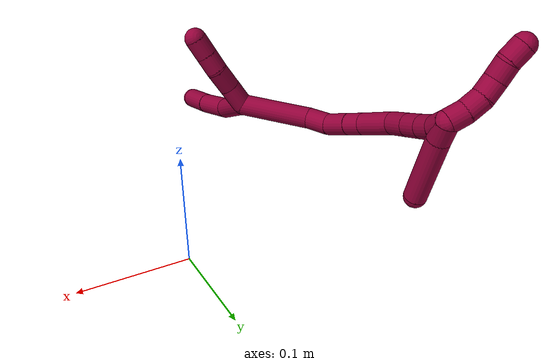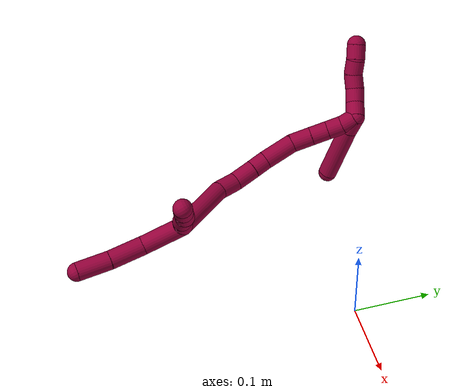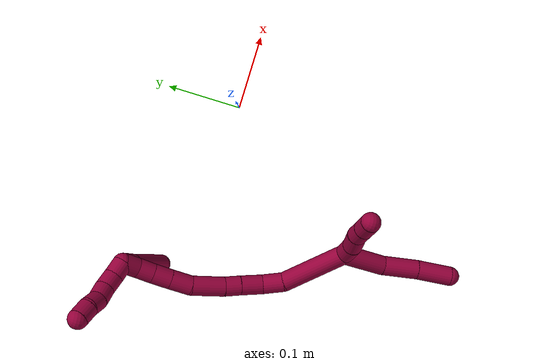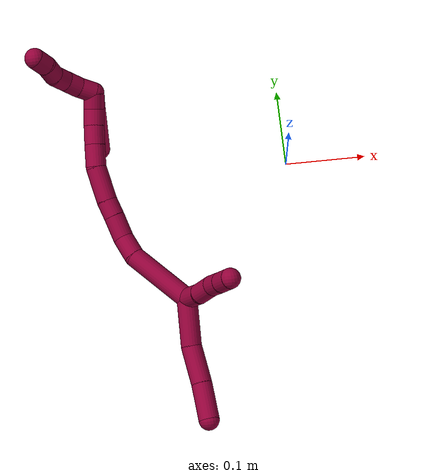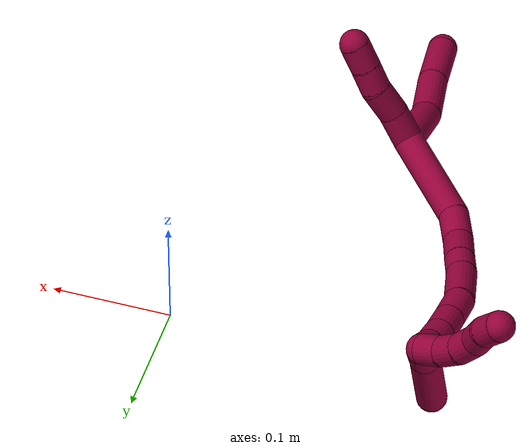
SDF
<sdf version="1.7">
 <world name="default">
  <model name="8">
   <static>0</static>
   <link name="8">
    <collision name="collision-cylinder-e_1_2_8">
     <pose>-0.001562 -0.001248 -0.02882 3.09833 -0.054086 -1.79241</pose>
     <geometry><cylinder><radius>0.0125</radius><length>0.057778</length></cylinder></geometry>
     <surface>
      <friction><ode><mu>1.16</mu><mu2>1.16</mu2><slip1>0</slip1><slip2>0</slip2></ode></friction>
      <contact><ode><kp>1e+06</kp><kd>1</kd><max_vel>0</max_vel><min_depth>0.001</min_depth></ode></contact>
     </surface>
    </collision>
    <visual name="visual-cylinder-e_1_2_8">
     <pose>-0.001562 -0.001248 -0.02882 3.09833 -0.054086 -1.79241</pose>
     <geometry><cylinder><radius>0.0125</radius><length>0.057778</length></cylinder></geometry>
     <material><ambient>0.584314 0 0.227451 1</ambient></material>
    </visual>
    <collision name="collision-cylinder-e_2_8_9">
     <pose>-0.000654 -0.009182 -0.080134 2.85262 0.104859 0.692295</pose>
     <geometry><cylinder><radius>0.0125</radius><length>0.047194</length></cylinder></geometry>
     <surface>
      <friction><ode><mu>1.16</mu><mu2>1.16</mu2><slip1>0</slip1><slip2>0</slip2></ode></friction>
      <contact><ode><kp>1e+06</kp><kd>1</kd><max_vel>0</max_vel><min_depth>0.001</min_depth></ode></contact>
     </surface>
    </collision>
    <visual name="visual-cylinder-e_2_8_9">
     <pose>-0.000654 -0.009182 -0.080134 2.85262 0.104859 0.692295</pose>
     <geometry><cylinder><radius>0.0125</radius><length>0.047194</length></cylinder></geometry>
     <material><ambient>0.584314 0 0.227451 1</ambient></material>
    </visual>
    <collision name="collision-cylinder-e_3_9_6">
     <pose>0.002587 -0.023085 -0.123941 2.81517 0.034257 0.207298</pose>
     <geometry><cylinder><radius>0.0125</radius><length>0.045028</length></cylinder></geometry>
     <surface>
      <friction><ode><mu>1.16</mu><mu2>1.16</mu2><slip1>0</slip1><slip2>0</slip2></ode></friction>
      <contact><ode><kp>1e+06</kp><kd>1</kd><max_vel>0</max_vel><min_depth>0.001</min_depth></ode></contact>
     </surface>
    </collision>
    <visual name="visual-cylinder-e_3_9_6">
     <pose>0.002587 -0.023085 -0.123941 2.81517 0.034257 0.207298</pose>
     <geometry><cylinder><radius>0.0125</radius><length>0.045028</length></cylinder></geometry>
     <material><ambient>0.584314 0 0.227451 1</ambient></material>
    </visual>
    <collision name="collision-cylinder-e_1_2_10">
     <pose>0.006844 -0.012211 0.002657 1.35658 0.501027 0.40671</pose>
     <geometry><cylinder><radius>0.0125</radius><length>0.028495</length></cylinder></geometry>
     <surface>
      <friction><ode><mu>1.16</mu><mu2>1.16</mu2><slip1>0</slip1><slip2>0</slip2></ode></friction>
      <contact><ode><kp>1e+06</kp><kd>1</kd><max_vel>0</max_vel><min_depth>0.001</min_depth></ode></contact>
     </surface>
    </collision>
    <visual name="visual-cylinder-e_1_2_10">
     <pose>0.006844 -0.012211 0.002657 1.35658 0.501027 0.40671</pose>
     <geometry><cylinder><radius>0.0125</radius><length>0.028495</length></cylinder></geometry>
     <material><ambient>0.584314 0 0.227451 1</ambient></material>
    </visual>
    <collision name="collision-cylinder-e_2_10_11">
     <pose>0.020938 -0.035136 0.009941 1.16304 0.55591 0.370827</pose>
     <geometry><cylinder><radius>0.0125</radius><length>0.027482</length></cylinder></geometry>
     <surface>
      <friction><ode><mu>1.16</mu><mu2>1.16</mu2><slip1>0</slip1><slip2>0</slip2></ode></friction>
      <contact><ode><kp>1e+06</kp><kd>1</kd><max_vel>0</max_vel><min_depth>0.001</min_depth></ode></contact>
     </surface>
    </collision>
    <visual name="visual-cylinder-e_2_10_11">
     <pose>0.020938 -0.035136 0.009941 1.16304 0.55591 0.370827</pose>
     <geometry><cylinder><radius>0.0125</radius><length>0.027482</length></cylinder></geometry>
     <material><ambient>0.584314 0 0.227451 1</ambient></material>
    </visual>
    <collision name="collision-cylinder-e_3_11_12">
     <pose>0.032838 -0.055347 0.016522 1.36802 0.447093 0.366557</pose>
     <geometry><cylinder><radius>0.0125</radius><length>0.021502</length></cylinder></geometry>
     <surface>
      <friction><ode><mu>1.16</mu><mu2>1.16</mu2><slip1>0</slip1><slip2>0</slip2></ode></friction>
      <contact><ode><kp>1e+06</kp><kd>1</kd><max_vel>0</max_vel><min_depth>0.001</min_depth></ode></contact>
     </surface>
    </collision>
    <visual name="visual-cylinder-e_3_11_12">
     <pose>0.032838 -0.055347 0.016522 1.36802 0.447093 0.366557</pose>
     <geometry><cylinder><radius>0.0125</radius><length>0.021502</length></cylinder></geometry>
     <material><ambient>0.584314 0 0.227451 1</ambient></material>
    </visual>
    <collision name="collision-cylinder-e_4_12_5">
     <pose>0.042431 -0.074685 0.020814 1.33746 0.454656 0.36159</pose>
     <geometry><cylinder><radius>0.0125</radius><length>0.022521</length></cylinder></geometry>
     <surface>
      <friction><ode><mu>1.16</mu><mu2>1.16</mu2><slip1>0</slip1><slip2>0</slip2></ode></friction>
      <contact><ode><kp>1e+06</kp><kd>1</kd><max_vel>0</max_vel><min_depth>0.001</min_depth></ode></contact>
     </surface>
    </collision>
    <visual name="visual-cylinder-e_4_12_5">
     <pose>0.042431 -0.074685 0.020814 1.33746 0.454656 0.36159</pose>
     <geometry><cylinder><radius>0.0125</radius><length>0.022521</length></cylinder></geometry>
     <material><ambient>0.584314 0 0.227451 1</ambient></material>
    </visual>
    <collision name="collision-cylinder-e_1_2_13">
     <pose>-0.026618 0.018136 0.028317 -0.569645 -0.669573 0.203008</pose>
     <geometry><cylinder><radius>0.0125</radius><length>0.085775</length></cylinder></geometry>
     <surface>
      <friction><ode><mu>1.16</mu><mu2>1.16</mu2><slip1>0</slip1><slip2>0</slip2></ode></friction>
      <contact><ode><kp>1e+06</kp><kd>1</kd><max_vel>0</max_vel><min_depth>0.001</min_depth></ode></contact>
     </surface>
    </collision>
    <visual name="visual-cylinder-e_1_2_13">
     <pose>-0.026618 0.018136 0.028317 -0.569645 -0.669573 0.203008</pose>
     <geometry><cylinder><radius>0.0125</radius><length>0.085775</length></cylinder></geometry>
     <material><ambient>0.584314 0 0.227451 1</ambient></material>
    </visual>
    <collision name="collision-cylinder-e_2_13_14">
     <pose>-0.058037 0.042442 0.068258 -0.487969 -0.349793 0.087921</pose>
     <geometry><cylinder><radius>0.0125</radius><length>0.028016</length></cylinder></geometry>
     <surface>
      <friction><ode><mu>1.16</mu><mu2>1.16</mu2><slip1>0</slip1><slip2>0</slip2></ode></friction>
      <contact><ode><kp>1e+06</kp><kd>1</kd><max_vel>0</max_vel><min_depth>0.001</min_depth></ode></contact>
     </surface>
    </collision>
    <visual name="visual-cylinder-e_2_13_14">
     <pose>-0.058037 0.042442 0.068258 -0.487969 -0.349793 0.087921</pose>
     <geometry><cylinder><radius>0.0125</radius><length>0.028016</length></cylinder></geometry>
     <material><ambient>0.584314 0 0.227451 1</ambient></material>
    </visual>
    <collision name="collision-cylinder-e_3_14_15">
     <pose>-0.066496 0.050834 0.093981 -0.156349 -0.250921 0.019759</pose>
     <geometry><cylinder><radius>0.0125</radius><length>0.029469</length></cylinder></geometry>
     <surface>
      <friction><ode><mu>1.16</mu><mu2>1.16</mu2><slip1>0</slip1><slip2>0</slip2></ode></friction>
      <contact><ode><kp>1e+06</kp><kd>1</kd><max_vel>0</max_vel><min_depth>0.001</min_depth></ode></contact>
     </surface>
    </collision>
    <visual name="visual-cylinder-e_3_14_15">
     <pose>-0.066496 0.050834 0.093981 -0.156349 -0.250921 0.019759</pose>
     <geometry><cylinder><radius>0.0125</radius><length>0.029469</length></cylinder></geometry>
     <material><ambient>0.584314 0 0.227451 1</ambient></material>
    </visual>
    <collision name="collision-cylinder-e_4_15_16">
     <pose>-0.07303 0.054775 0.117932 -0.17261 -0.279986 0.024383</pose>
     <geometry><cylinder><radius>0.0125</radius><length>0.020813</length></cylinder></geometry>
     <surface>
      <friction><ode><mu>1.16</mu><mu2>1.16</mu2><slip1>0</slip1><slip2>0</slip2></ode></friction>
      <contact><ode><kp>1e+06</kp><kd>1</kd><max_vel>0</max_vel><min_depth>0.001</min_depth></ode></contact>
     </surface>
    </collision>
    <visual name="visual-cylinder-e_4_15_16">
     <pose>-0.07303 0.054775 0.117932 -0.17261 -0.279986 0.024383</pose>
     <geometry><cylinder><radius>0.0125</radius><length>0.020813</length></cylinder></geometry>
     <material><ambient>0.584314 0 0.227451 1</ambient></material>
    </visual>
    <collision name="collision-cylinder-e_5_16_17">
     <pose>-0.079477 0.059205 0.148873 -0.127924 -0.16643 0.010684</pose>
     <geometry><cylinder><radius>0.0125</radius><length>0.04312</length></cylinder></geometry>
     <surface>
      <friction><ode><mu>1.16</mu><mu2>1.16</mu2><slip1>0</slip1><slip2>0</slip2></ode></friction>
      <contact><ode><kp>1e+06</kp><kd>1</kd><max_vel>0</max_vel><min_depth>0.001</min_depth></ode></contact>
     </surface>
    </collision>
    <visual name="visual-cylinder-e_5_16_17">
     <pose>-0.079477 0.059205 0.148873 -0.127924 -0.16643 0.010684</pose>
     <geometry><cylinder><radius>0.0125</radius><length>0.04312</length></cylinder></geometry>
     <material><ambient>0.584314 0 0.227451 1</ambient></material>
    </visual>
    <collision name="collision-cylinder-e_6_17_18">
     <pose>-0.081796 0.064146 0.183672 -0.161128 0.089932 -0.007266</pose>
     <geometry><cylinder><radius>0.0125</radius><length>0.027894</length></cylinder></geometry>
     <surface>
      <friction><ode><mu>1.16</mu><mu2>1.16</mu2><slip1>0</slip1><slip2>0</slip2></ode></friction>
      <contact><ode><kp>1e+06</kp><kd>1</kd><max_vel>0</max_vel><min_depth>0.001</min_depth></ode></contact>
     </surface>
    </collision>
    <visual name="visual-cylinder-e_6_17_18">
     <pose>-0.081796 0.064146 0.183672 -0.161128 0.089932 -0.007266</pose>
     <geometry><cylinder><radius>0.0125</radius><length>0.027894</length></cylinder></geometry>
     <material><ambient>0.584314 0 0.227451 1</ambient></material>
    </visual>
    <collision name="collision-cylinder-e_7_18_19">
     <pose>-0.079253 0.068079 0.20891 -0.14684 0.110345 -0.008124</pose>
     <geometry><cylinder><radius>0.0125</radius><length>0.023446</length></cylinder></geometry>
     <surface>
      <friction><ode><mu>1.16</mu><mu2>1.16</mu2><slip1>0</slip1><slip2>0</slip2></ode></friction>
      <contact><ode><kp>1e+06</kp><kd>1</kd><max_vel>0</max_vel><min_depth>0.001</min_depth></ode></contact>
     </surface>
    </collision>
    <visual name="visual-cylinder-e_7_18_19">
     <pose>-0.079253 0.068079 0.20891 -0.14684 0.110345 -0.008124</pose>
     <geometry><cylinder><radius>0.0125</radius><length>0.023446</length></cylinder></geometry>
     <material><ambient>0.584314 0 0.227451 1</ambient></material>
    </visual>
    <collision name="collision-cylinder-e_8_19_20">
     <pose>-0.076396 0.070771 0.230901 -0.094048 0.147885 -0.006972</pose>
     <geometry><cylinder><radius>0.0125</radius><length>0.021255</length></cylinder></geometry>
     <surface>
      <friction><ode><mu>1.16</mu><mu2>1.16</mu2><slip1>0</slip1><slip2>0</slip2></ode></friction>
      <contact><ode><kp>1e+06</kp><kd>1</kd><max_vel>0</max_vel><min_depth>0.001</min_depth></ode></contact>
     </surface>
    </collision>
    <visual name="visual-cylinder-e_8_19_20">
     <pose>-0.076396 0.070771 0.230901 -0.094048 0.147885 -0.006972</pose>
     <geometry><cylinder><radius>0.0125</radius><length>0.021255</length></cylinder></geometry>
     <material><ambient>0.584314 0 0.227451 1</ambient></material>
    </visual>
    <collision name="collision-cylinder-e_9_20_1">
     <pose>-0.073453 0.070031 0.251228 0.173403 0.136663 0.011897</pose>
     <geometry><cylinder><radius>0.0125</radius><length>0.020213</length></cylinder></geometry>
     <surface>
      <friction><ode><mu>1.16</mu><mu2>1.16</mu2><slip1>0</slip1><slip2>0</slip2></ode></friction>
      <contact><ode><kp>1e+06</kp><kd>1</kd><max_vel>0</max_vel><min_depth>0.001</min_depth></ode></contact>
     </surface>
    </collision>
    <visual name="visual-cylinder-e_9_20_1">
     <pose>-0.073453 0.070031 0.251228 0.173403 0.136663 0.011897</pose>
     <geometry><cylinder><radius>0.0125</radius><length>0.020213</length></cylinder></geometry>
     <material><ambient>0.584314 0 0.227451 1</ambient></material>
    </visual>
    <collision name="collision-cylinder-e_1_1_21">
     <pose>-0.080776 0.065887 0.265389 0.512116 -1.05508 -0.30273</pose>
     <geometry><cylinder><radius>0.0125</radius><length>0.02</length></cylinder></geometry>
     <surface>
      <friction><ode><mu>1.16</mu><mu2>1.16</mu2><slip1>0</slip1><slip2>0</slip2></ode></friction>
      <contact><ode><kp>1e+06</kp><kd>1</kd><max_vel>0</max_vel><min_depth>0.001</min_depth></ode></contact>
     </surface>
    </collision>
    <visual name="visual-cylinder-e_1_1_21">
     <pose>-0.080776 0.065887 0.265389 0.512116 -1.05508 -0.30273</pose>
     <geometry><cylinder><radius>0.0125</radius><length>0.02</length></cylinder></geometry>
     <material><ambient>0.584314 0 0.227451 1</ambient></material>
    </visual>
    <collision name="collision-cylinder-e_2_21_22">
     <pose>-0.0971 0.059143 0.274498 0.732634 -0.867182 -0.351557</pose>
     <geometry><cylinder><radius>0.0125</radius><length>0.02</length></cylinder></geometry>
     <surface>
      <friction><ode><mu>1.16</mu><mu2>1.16</mu2><slip1>0</slip1><slip2>0</slip2></ode></friction>
      <contact><ode><kp>1e+06</kp><kd>1</kd><max_vel>0</max_vel><min_depth>0.001</min_depth></ode></contact>
     </surface>
    </collision>
    <visual name="visual-cylinder-e_2_21_22">
     <pose>-0.0971 0.059143 0.274498 0.732634 -0.867182 -0.351557</pose>
     <geometry><cylinder><radius>0.0125</radius><length>0.02</length></cylinder></geometry>
     <material><ambient>0.584314 0 0.227451 1</ambient></material>
    </visual>
    <collision name="collision-cylinder-e_3_22_23">
     <pose>-0.111283 0.04843 0.283335 1.00804 -0.715175 -0.406473</pose>
     <geometry><cylinder><radius>0.0125</radius><length>0.02</length></cylinder></geometry>
     <surface>
      <friction><ode><mu>1.16</mu><mu2>1.16</mu2><slip1>0</slip1><slip2>0</slip2></ode></friction>
      <contact><ode><kp>1e+06</kp><kd>1</kd><max_vel>0</max_vel><min_depth>0.001</min_depth></ode></contact>
     </surface>
    </collision>
    <visual name="visual-cylinder-e_3_22_23">
     <pose>-0.111283 0.04843 0.283335 1.00804 -0.715175 -0.406473</pose>
     <geometry><cylinder><radius>0.0125</radius><length>0.02</length></cylinder></geometry>
     <material><ambient>0.584314 0 0.227451 1</ambient></material>
    </visual>
    <collision name="collision-cylinder-e_4_23_24">
     <pose>-0.121778 0.035223 0.293524 0.836233 -0.404777 -0.181842</pose>
     <geometry><cylinder><radius>0.0125</radius><length>0.02</length></cylinder></geometry>
     <surface>
      <friction><ode><mu>1.16</mu><mu2>1.16</mu2><slip1>0</slip1><slip2>0</slip2></ode></friction>
      <contact><ode><kp>1e+06</kp><kd>1</kd><max_vel>0</max_vel><min_depth>0.001</min_depth></ode></contact>
     </surface>
    </collision>
    <visual name="visual-cylinder-e_4_23_24">
     <pose>-0.121778 0.035223 0.293524 0.836233 -0.404777 -0.181842</pose>
     <geometry><cylinder><radius>0.0125</radius><length>0.02</length></cylinder></geometry>
     <material><ambient>0.584314 0 0.227451 1</ambient></material>
    </visual>
    <collision name="collision-cylinder-e_5_24_4">
     <pose>-0.132038 0.022882 0.305124 0.792821 -0.684308 -0.295977</pose>
     <geometry><cylinder><radius>0.0125</radius><length>0.02</length></cylinder></geometry>
     <surface>
      <friction><ode><mu>1.16</mu><mu2>1.16</mu2><slip1>0</slip1><slip2>0</slip2></ode></friction>
      <contact><ode><kp>1e+06</kp><kd>1</kd><max_vel>0</max_vel><min_depth>0.001</min_depth></ode></contact>
     </surface>
    </collision>
    <visual name="visual-cylinder-e_5_24_4">
     <pose>-0.132038 0.022882 0.305124 0.792821 -0.684308 -0.295977</pose>
     <geometry><cylinder><radius>0.0125</radius><length>0.02</length></cylinder></geometry>
     <material><ambient>0.584314 0 0.227451 1</ambient></material>
    </visual>
    <collision name="collision-cylinder-e_1_1_25">
     <pose>-0.07236 0.075926 0.252672 -2.40579 -0.024964 0.064747</pose>
     <geometry><cylinder><radius>0.0125</radius><length>0.02272</length></cylinder></geometry>
     <surface>
      <friction><ode><mu>1.16</mu><mu2>1.16</mu2><slip1>0</slip1><slip2>0</slip2></ode></friction>
      <contact><ode><kp>1e+06</kp><kd>1</kd><max_vel>0</max_vel><min_depth>0.001</min_depth></ode></contact>
     </surface>
    </collision>
    <visual name="visual-cylinder-e_1_1_25">
     <pose>-0.07236 0.075926 0.252672 -2.40579 -0.024964 0.064747</pose>
     <geometry><cylinder><radius>0.0125</radius><length>0.02272</length></cylinder></geometry>
     <material><ambient>0.584314 0 0.227451 1</ambient></material>
    </visual>
    <collision name="collision-cylinder-e_2_25_3">
     <pose>-0.072247 0.111234 0.217302 -2.34275 0.010265 -0.024318</pose>
     <geometry><cylinder><radius>0.0125</radius><length>0.07728</length></cylinder></geometry>
     <surface>
      <friction><ode><mu>1.16</mu><mu2>1.16</mu2><slip1>0</slip1><slip2>0</slip2></ode></friction>
      <contact><ode><kp>1e+06</kp><kd>1</kd><max_vel>0</max_vel><min_depth>0.001</min_depth></ode></contact>
     </surface>
    </collision>
    <visual name="visual-cylinder-e_2_25_3">
     <pose>-0.072247 0.111234 0.217302 -2.34275 0.010265 -0.024318</pose>
     <geometry><cylinder><radius>0.0125</radius><length>0.07728</length></cylinder></geometry>
     <material><ambient>0.584314 0 0.227451 1</ambient></material>
    </visual>
    <collision name="collision-sphere-3">
     <pose>-0.07185 0.13892 0.19035 0 -0 0</pose>
     <geometry><sphere><radius>0.0125</radius></sphere></geometry>
     <surface>
      <friction><ode><mu>1.16</mu><mu2>1.16</mu2><slip1>0</slip1><slip2>0</slip2></ode></friction>
      <contact><ode><kp>1e+06</kp><kd>1</kd><max_vel>0</max_vel><min_depth>0.001</min_depth></ode></contact>
     </surface>
    </collision>
    <visual name="visual-sphere-3">
     <pose>-0.07185 0.13892 0.19035 0 -0 0</pose>
     <geometry><sphere><radius>0.0125</radius></sphere></geometry>
     <material><ambient>0.584314 0 0.227451 1</ambient></material>
    </visual>
    <collision name="collision-sphere-25">
     <pose>-0.072643 0.083548 0.244253 0 -0 0</pose>
     <geometry><sphere><radius>0.0125</radius></sphere></geometry>
     <surface>
      <friction><ode><mu>1.16</mu><mu2>1.16</mu2><slip1>0</slip1><slip2>0</slip2></ode></friction>
      <contact><ode><kp>1e+06</kp><kd>1</kd><max_vel>0</max_vel><min_depth>0.001</min_depth></ode></contact>
     </surface>
    </collision>
    <visual name="visual-sphere-25">
     <pose>-0.072643 0.083548 0.244253 0 -0 0</pose>
     <geometry><sphere><radius>0.0125</radius></sphere></geometry>
     <material><ambient>0.584314 0 0.227451 1</ambient></material>
    </visual>
    <collision name="collision-sphere-4">
     <pose>-0.138359 0.017363 0.310562 0 -0 0</pose>
     <geometry><sphere><radius>0.0125</radius></sphere></geometry>
     <surface>
      <friction><ode><mu>1.16</mu><mu2>1.16</mu2><slip1>0</slip1><slip2>0</slip2></ode></friction>
      <contact><ode><kp>1e+06</kp><kd>1</kd><max_vel>0</max_vel><min_depth>0.001</min_depth></ode></contact>
     </surface>
    </collision>
    <visual name="visual-sphere-4">
     <pose>-0.138359 0.017363 0.310562 0 -0 0</pose>
     <geometry><sphere><radius>0.0125</radius></sphere></geometry>
     <material><ambient>0.584314 0 0.227451 1</ambient></material>
    </visual>
    <collision name="collision-sphere-24">
     <pose>-0.125716 0.028402 0.299685 0 -0 0</pose>
     <geometry><sphere><radius>0.0125</radius></sphere></geometry>
     <surface>
      <friction><ode><mu>1.16</mu><mu2>1.16</mu2><slip1>0</slip1><slip2>0</slip2></ode></friction>
      <contact><ode><kp>1e+06</kp><kd>1</kd><max_vel>0</max_vel><min_depth>0.001</min_depth></ode></contact>
     </surface>
    </collision>
    <visual name="visual-sphere-24">
     <pose>-0.125716 0.028402 0.299685 0 -0 0</pose>
     <geometry><sphere><radius>0.0125</radius></sphere></geometry>
     <material><ambient>0.584314 0 0.227451 1</ambient></material>
    </visual>
    <collision name="collision-sphere-23">
     <pose>-0.11784 0.042045 0.287363 0 -0 0</pose>
     <geometry><sphere><radius>0.0125</radius></sphere></geometry>
     <surface>
      <friction><ode><mu>1.16</mu><mu2>1.16</mu2><slip1>0</slip1><slip2>0</slip2></ode></friction>
      <contact><ode><kp>1e+06</kp><kd>1</kd><max_vel>0</max_vel><min_depth>0.001</min_depth></ode></contact>
     </surface>
    </collision>
    <visual name="visual-sphere-23">
     <pose>-0.11784 0.042045 0.287363 0 -0 0</pose>
     <geometry><sphere><radius>0.0125</radius></sphere></geometry>
     <material><ambient>0.584314 0 0.227451 1</ambient></material>
    </visual>
    <collision name="collision-sphere-22">
     <pose>-0.104725 0.054816 0.279307 0 -0 0</pose>
     <geometry><sphere><radius>0.0125</radius></sphere></geometry>
     <surface>
      <friction><ode><mu>1.16</mu><mu2>1.16</mu2><slip1>0</slip1><slip2>0</slip2></ode></friction>
      <contact><ode><kp>1e+06</kp><kd>1</kd><max_vel>0</max_vel><min_depth>0.001</min_depth></ode></contact>
     </surface>
    </collision>
    <visual name="visual-sphere-22">
     <pose>-0.104725 0.054816 0.279307 0 -0 0</pose>
     <geometry><sphere><radius>0.0125</radius></sphere></geometry>
     <material><ambient>0.584314 0 0.227451 1</ambient></material>
    </visual>
    <collision name="collision-sphere-21">
     <pose>-0.089475 0.06347 0.269688 0 -0 0</pose>
     <geometry><sphere><radius>0.0125</radius></sphere></geometry>
     <surface>
      <friction><ode><mu>1.16</mu><mu2>1.16</mu2><slip1>0</slip1><slip2>0</slip2></ode></friction>
      <contact><ode><kp>1e+06</kp><kd>1</kd><max_vel>0</max_vel><min_depth>0.001</min_depth></ode></contact>
     </surface>
    </collision>
    <visual name="visual-sphere-21">
     <pose>-0.089475 0.06347 0.269688 0 -0 0</pose>
     <geometry><sphere><radius>0.0125</radius></sphere></geometry>
     <material><ambient>0.584314 0 0.227451 1</ambient></material>
    </visual>
    <collision name="collision-sphere-1">
     <pose>-0.072076 0.068304 0.26109 0 -0 0</pose>
     <geometry><sphere><radius>0.0125</radius></sphere></geometry>
     <surface>
      <friction><ode><mu>1.16</mu><mu2>1.16</mu2><slip1>0</slip1><slip2>0</slip2></ode></friction>
      <contact><ode><kp>1e+06</kp><kd>1</kd><max_vel>0</max_vel><min_depth>0.001</min_depth></ode></contact>
     </surface>
    </collision>
    <visual name="visual-sphere-1">
     <pose>-0.072076 0.068304 0.26109 0 -0 0</pose>
     <geometry><sphere><radius>0.0125</radius></sphere></geometry>
     <material><ambient>0.584314 0 0.227451 1</ambient></material>
    </visual>
    <collision name="collision-sphere-11">
     <pose>0.02819 -0.045851 0.01457 0 -0 0</pose>
     <geometry><sphere><radius>0.0125</radius></sphere></geometry>
     <surface>
      <friction><ode><mu>1.16</mu><mu2>1.16</mu2><slip1>0</slip1><slip2>0</slip2></ode></friction>
      <contact><ode><kp>1e+06</kp><kd>1</kd><max_vel>0</max_vel><min_depth>0.001</min_depth></ode></contact>
     </surface>
    </collision>
    <visual name="visual-sphere-11">
     <pose>0.02819 -0.045851 0.01457 0 -0 0</pose>
     <geometry><sphere><radius>0.0125</radius></sphere></geometry>
     <material><ambient>0.584314 0 0.227451 1</ambient></material>
    </visual>
    <collision name="collision-sphere-10">
     <pose>0.013687 -0.024422 0.005313 0 -0 0</pose>
     <geometry><sphere><radius>0.0125</radius></sphere></geometry>
     <surface>
      <friction><ode><mu>1.16</mu><mu2>1.16</mu2><slip1>0</slip1><slip2>0</slip2></ode></friction>
      <contact><ode><kp>1e+06</kp><kd>1</kd><max_vel>0</max_vel><min_depth>0.001</min_depth></ode></contact>
     </surface>
    </collision>
    <visual name="visual-sphere-10">
     <pose>0.013687 -0.024422 0.005313 0 -0 0</pose>
     <geometry><sphere><radius>0.0125</radius></sphere></geometry>
     <material><ambient>0.584314 0 0.227451 1</ambient></material>
    </visual>
    <collision name="collision-sphere-6">
     <pose>0.003358 -0.0303 -0.145253 0 -0 0</pose>
     <geometry><sphere><radius>0.0125</radius></sphere></geometry>
     <surface>
      <friction><ode><mu>1.16</mu><mu2>1.16</mu2><slip1>0</slip1><slip2>0</slip2></ode></friction>
      <contact><ode><kp>1e+06</kp><kd>1</kd><max_vel>0</max_vel><min_depth>0.001</min_depth></ode></contact>
     </surface>
    </collision>
    <visual name="visual-sphere-6">
     <pose>0.003358 -0.0303 -0.145253 0 -0 0</pose>
     <geometry><sphere><radius>0.0125</radius></sphere></geometry>
     <material><ambient>0.584314 0 0.227451 1</ambient></material>
    </visual>
    <collision name="collision-sphere-9">
     <pose>0.001816 -0.01587 -0.102628 0 -0 0</pose>
     <geometry><sphere><radius>0.0125</radius></sphere></geometry>
     <surface>
      <friction><ode><mu>1.16</mu><mu2>1.16</mu2><slip1>0</slip1><slip2>0</slip2></ode></friction>
      <contact><ode><kp>1e+06</kp><kd>1</kd><max_vel>0</max_vel><min_depth>0.001</min_depth></ode></contact>
     </surface>
    </collision>
    <visual name="visual-sphere-9">
     <pose>0.001816 -0.01587 -0.102628 0 -0 0</pose>
     <geometry><sphere><radius>0.0125</radius></sphere></geometry>
     <material><ambient>0.584314 0 0.227451 1</ambient></material>
    </visual>
    <collision name="collision-sphere-2">
     <geometry><sphere><radius>0.0125</radius></sphere></geometry>
     <surface>
      <friction><ode><mu>1.16</mu><mu2>1.16</mu2><slip1>0</slip1><slip2>0</slip2></ode></friction>
      <contact><ode><kp>1e+06</kp><kd>1</kd><max_vel>0</max_vel><min_depth>0.001</min_depth></ode></contact>
     </surface>
    </collision>
    <visual name="visual-sphere-2">
     <geometry><sphere><radius>0.0125</radius></sphere></geometry>
     <material><ambient>0.584314 0 0.227451 1</ambient></material>
    </visual>
    <collision name="collision-sphere-19">
     <pose>-0.077962 0.069784 0.220436 0 -0 0</pose>
     <geometry><sphere><radius>0.0125</radius></sphere></geometry>
     <surface>
      <friction><ode><mu>1.16</mu><mu2>1.16</mu2><slip1>0</slip1><slip2>0</slip2></ode></friction>
      <contact><ode><kp>1e+06</kp><kd>1</kd><max_vel>0</max_vel><min_depth>0.001</min_depth></ode></contact>
     </surface>
    </collision>
    <visual name="visual-sphere-19">
     <pose>-0.077962 0.069784 0.220436 0 -0 0</pose>
     <geometry><sphere><radius>0.0125</radius></sphere></geometry>
     <material><ambient>0.584314 0 0.227451 1</ambient></material>
    </visual>
    <collision name="collision-sphere-8">
     <pose>-0.003123 -0.002495 -0.05764 0 -0 0</pose>
     <geometry><sphere><radius>0.0125</radius></sphere></geometry>
     <surface>
      <friction><ode><mu>1.16</mu><mu2>1.16</mu2><slip1>0</slip1><slip2>0</slip2></ode></friction>
      <contact><ode><kp>1e+06</kp><kd>1</kd><max_vel>0</max_vel><min_depth>0.001</min_depth></ode></contact>
     </surface>
    </collision>
    <visual name="visual-sphere-8">
     <pose>-0.003123 -0.002495 -0.05764 0 -0 0</pose>
     <geometry><sphere><radius>0.0125</radius></sphere></geometry>
     <material><ambient>0.584314 0 0.227451 1</ambient></material>
    </visual>
    <collision name="collision-sphere-12">
     <pose>0.037486 -0.064842 0.018474 0 -0 0</pose>
     <geometry><sphere><radius>0.0125</radius></sphere></geometry>
     <surface>
      <friction><ode><mu>1.16</mu><mu2>1.16</mu2><slip1>0</slip1><slip2>0</slip2></ode></friction>
      <contact><ode><kp>1e+06</kp><kd>1</kd><max_vel>0</max_vel><min_depth>0.001</min_depth></ode></contact>
     </surface>
    </collision>
    <visual name="visual-sphere-12">
     <pose>0.037486 -0.064842 0.018474 0 -0 0</pose>
     <geometry><sphere><radius>0.0125</radius></sphere></geometry>
     <material><ambient>0.584314 0 0.227451 1</ambient></material>
    </visual>
    <collision name="collision-sphere-5">
     <pose>0.047376 -0.084527 0.023153 0 -0 0</pose>
     <geometry><sphere><radius>0.0125</radius></sphere></geometry>
     <surface>
      <friction><ode><mu>1.16</mu><mu2>1.16</mu2><slip1>0</slip1><slip2>0</slip2></ode></friction>
      <contact><ode><kp>1e+06</kp><kd>1</kd><max_vel>0</max_vel><min_depth>0.001</min_depth></ode></contact>
     </surface>
    </collision>
    <visual name="visual-sphere-5">
     <pose>0.047376 -0.084527 0.023153 0 -0 0</pose>
     <geometry><sphere><radius>0.0125</radius></sphere></geometry>
     <material><ambient>0.584314 0 0.227451 1</ambient></material>
    </visual>
    <collision name="collision-sphere-13">
     <pose>-0.053236 0.036273 0.056635 0 -0 0</pose>
     <geometry><sphere><radius>0.0125</radius></sphere></geometry>
     <surface>
      <friction><ode><mu>1.16</mu><mu2>1.16</mu2><slip1>0</slip1><slip2>0</slip2></ode></friction>
      <contact><ode><kp>1e+06</kp><kd>1</kd><max_vel>0</max_vel><min_depth>0.001</min_depth></ode></contact>
     </surface>
    </collision>
    <visual name="visual-sphere-13">
     <pose>-0.053236 0.036273 0.056635 0 -0 0</pose>
     <geometry><sphere><radius>0.0125</radius></sphere></geometry>
     <material><ambient>0.584314 0 0.227451 1</ambient></material>
    </visual>
    <collision name="collision-sphere-14">
     <pose>-0.062837 0.048612 0.079882 0 -0 0</pose>
     <geometry><sphere><radius>0.0125</radius></sphere></geometry>
     <surface>
      <friction><ode><mu>1.16</mu><mu2>1.16</mu2><slip1>0</slip1><slip2>0</slip2></ode></friction>
      <contact><ode><kp>1e+06</kp><kd>1</kd><max_vel>0</max_vel><min_depth>0.001</min_depth></ode></contact>
     </surface>
    </collision>
    <visual name="visual-sphere-14">
     <pose>-0.062837 0.048612 0.079882 0 -0 0</pose>
     <geometry><sphere><radius>0.0125</radius></sphere></geometry>
     <material><ambient>0.584314 0 0.227451 1</ambient></material>
    </visual>
    <collision name="collision-sphere-15">
     <pose>-0.070154 0.053057 0.10808 0 -0 0</pose>
     <geometry><sphere><radius>0.0125</radius></sphere></geometry>
     <surface>
      <friction><ode><mu>1.16</mu><mu2>1.16</mu2><slip1>0</slip1><slip2>0</slip2></ode></friction>
      <contact><ode><kp>1e+06</kp><kd>1</kd><max_vel>0</max_vel><min_depth>0.001</min_depth></ode></contact>
     </surface>
    </collision>
    <visual name="visual-sphere-15">
     <pose>-0.070154 0.053057 0.10808 0 -0 0</pose>
     <geometry><sphere><radius>0.0125</radius></sphere></geometry>
     <material><ambient>0.584314 0 0.227451 1</ambient></material>
    </visual>
    <collision name="collision-sphere-16">
     <pose>-0.075905 0.056492 0.127785 0 -0 0</pose>
     <geometry><sphere><radius>0.0125</radius></sphere></geometry>
     <surface>
      <friction><ode><mu>1.16</mu><mu2>1.16</mu2><slip1>0</slip1><slip2>0</slip2></ode></friction>
      <contact><ode><kp>1e+06</kp><kd>1</kd><max_vel>0</max_vel><min_depth>0.001</min_depth></ode></contact>
     </surface>
    </collision>
    <visual name="visual-sphere-16">
     <pose>-0.075905 0.056492 0.127785 0 -0 0</pose>
     <geometry><sphere><radius>0.0125</radius></sphere></geometry>
     <material><ambient>0.584314 0 0.227451 1</ambient></material>
    </visual>
    <collision name="collision-sphere-17">
     <pose>-0.083049 0.061917 0.169961 0 -0 0</pose>
     <geometry><sphere><radius>0.0125</radius></sphere></geometry>
     <surface>
      <friction><ode><mu>1.16</mu><mu2>1.16</mu2><slip1>0</slip1><slip2>0</slip2></ode></friction>
      <contact><ode><kp>1e+06</kp><kd>1</kd><max_vel>0</max_vel><min_depth>0.001</min_depth></ode></contact>
     </surface>
    </collision>
    <visual name="visual-sphere-17">
     <pose>-0.083049 0.061917 0.169961 0 -0 0</pose>
     <geometry><sphere><radius>0.0125</radius></sphere></geometry>
     <material><ambient>0.584314 0 0.227451 1</ambient></material>
    </visual>
    <collision name="collision-sphere-18">
     <pose>-0.080544 0.066375 0.197383 0 -0 0</pose>
     <geometry><sphere><radius>0.0125</radius></sphere></geometry>
     <surface>
      <friction><ode><mu>1.16</mu><mu2>1.16</mu2><slip1>0</slip1><slip2>0</slip2></ode></friction>
      <contact><ode><kp>1e+06</kp><kd>1</kd><max_vel>0</max_vel><min_depth>0.001</min_depth></ode></contact>
     </surface>
    </collision>
    <visual name="visual-sphere-18">
     <pose>-0.080544 0.066375 0.197383 0 -0 0</pose>
     <geometry><sphere><radius>0.0125</radius></sphere></geometry>
     <material><ambient>0.584314 0 0.227451 1</ambient></material>
    </visual>
    <collision name="collision-sphere-20">
     <pose>-0.07483 0.071758 0.241366 0 -0 0</pose>
     <geometry><sphere><radius>0.0125</radius></sphere></geometry>
     <surface>
      <friction><ode><mu>1.16</mu><mu2>1.16</mu2><slip1>0</slip1><slip2>0</slip2></ode></friction>
      <contact><ode><kp>1e+06</kp><kd>1</kd><max_vel>0</max_vel><min_depth>0.001</min_depth></ode></contact>
     </surface>
    </collision>
    <visual name="visual-sphere-20">
     <pose>-0.07483 0.071758 0.241366 0 -0 0</pose>
     <geometry><sphere><radius>0.0125</radius></sphere></geometry>
     <material><ambient>0.584314 0 0.227451 1</ambient></material>
    </visual>
    <inertial>
     <pose>-0.044964 0.031284 0.102811 0 -0 0</pose>
     <mass>0.75</mass>
     <inertia><ixx>0.00013</ixx><ixy>0</ixy><ixz>0</ixz><iyy>3.9e-05</iyy><iyz>0</iyz><izz>6e-06</izz></inertia>
    </inertial>
   </link>
   <pose>-0.145515 -0.187718 0.065953 -1.14837 0.026956 0.057682</pose>
  </model>
 </world>
</sdf>
